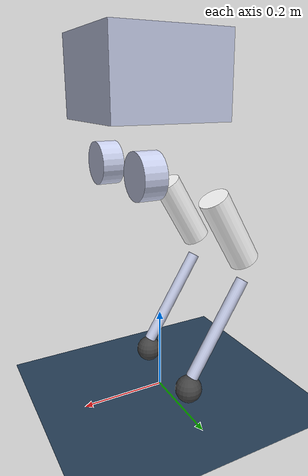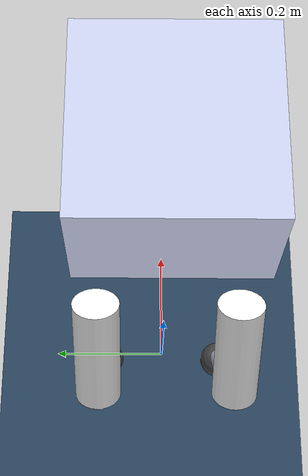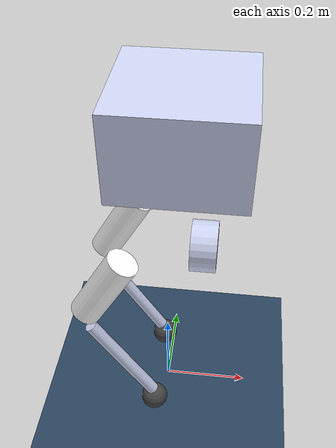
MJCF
<mujoco model="point_foot">
  <compiler angle="radian" autolimits="true"/>
  <statistic meansize="0.201559" extent="0.948112" center="0.00499457 0 -0.337764"/>

  <asset>
        <!--设置地板-->
        <texture name="grid" type="2d" builtin="checker" width="512" height="512" rgb1=".1 .2 .3" rgb2=".2 .3 .4"/>
        <material name="grid" texture="grid" texrepeat="1 1" texuniform="true" reflectance=".2"/>
    </asset>

    <option timestep="0.0005" integrator="RK4">
        <flag sensornoise="enable" />
    </option>

    <visual>
        <map force="0.1" zfar="30"/>
        <rgba haze="0.15 0.25 0.35 1"/>
        <global offwidth="2560" offheight="1440" elevation="-20" azimuth="120"/>
    </visual>

  <worldbody>
          <!--主光源（头顶）-->
      <light name="main_light" diffuse="2 2 2" specular="0.5 0.5 0.5" pos="0 0 40" dir="0 0 -1" castshadow="true"/>
      <!--辅助光源,四面八方-->
      <light name="aux_light1" diffuse=".8 .8 .8" pos=" 10 0 1" dir="-1 0 0" castshadow="false"/>
      <light name="aux_light2" diffuse=".8 .8 .8" pos="-10 0 1" dir=" 1 0 0" castshadow="false"/>
      <light name="aux_light3" diffuse=".8 .8 .8" pos="0  10 1" dir="0 -1 0" castshadow="false"/>
      <light name="aux_light4" diffuse=".8 .8 .8" pos="0 -10 1" dir="0  1 0" castshadow="false"/>
      <!--地板-->
      <geom name="floor" type="plane" size="0 0 0.05" material="grid"/>

       <body name="base_Link" pos="0 0 0.82" euler="0 0 0">
    <inertial pos="0.04576 0.00014 -0.16398"  mass="9.585" fullinertia="140110.479E-06 110641.449E-06 98944.542E-06 534.939E-06 28184.116E-06 -27.278E-06"/>
    <freejoint name="base_Link"/>
    <geom size="0.1325 0.13 0.09" pos="0.033 0 -0.07" type="box" rgba="0.79216 0.81961 0.93333 1"/>
    <site name="imu_site" pos="0 0 0" size="0.02" rgba="1 0 0 1" type="sphere" />

    <body name="abad_L_Link" pos="0.05556 0.105 -0.2602">
      <inertial pos="-0.06977 0.04479 0.00057" quat="0.595024 0.579772 0.394141 0.393019" mass="1.469" diaginertia="0.00252289 0.00208104 0.00139163"/>
      <joint name="abad_L_Joint" pos="0 0 0" axis="1 0 0" range="-0.38397 1.39626"/>
      <geom size="0.05 0.025" pos="0.03 0 0" quat="0.500398 0.5 0.499602 0.5" type="cylinder" rgba="0.79216 0.81961 0.93333 1"/>
      <body name="hip_L_Link" pos="-0.077 0.0205 0">
        <inertial pos="-0.02869 -0.0477 -0.03992" quat="0.853885 0.192797 0.226903 0.426877" mass="2.3" diaginertia="0.0233264 0.0230229 0.00277548"/>
        <joint name="hip_L_Joint" pos="0 0 0" axis="0 1 0" range="-1.01229 1.39626"/>
        <geom size="0.035 0.09" pos="-0.1 -0.02 -0.14" quat="0.965093 0 0.261909 0" type="cylinder" rgba="1 1 1 1"/>
        <body name="knee_L_Link" pos="-0.15 -0.0205 -0.25981">
          <inertial pos="0.0756053 0.00114274 -0.124051" quat="0.666349 -0.193556 -0.182961 0.696448" mass="0.730001" diaginertia="0.00961893 0.00954758 0.000224052"/>
          <joint name="knee_L_Joint" pos="0 0 0" axis="0 -1 0" range="-0.872665 1.36136"/>
          <geom size="0.015 0.13" pos="0.073 0 -0.12" quat="0.962425 0 -0.271547 0" type="cylinder" rgba="0.79216 0.81961 0.93333 1"/>
          <geom name="lfoot" size="0.032" pos="0.15 0 -0.25981" rgba="0.26667 0.26667 0.26667 1"/>
        </body>
      </body>
    </body>
    <body name="abad_R_Link" pos="0.05556 -0.105 -0.2602">
      <inertial pos="-0.06977 -0.04479 0.00057" quat="0.393019 0.394141 0.579772 0.595024" mass="1.469" diaginertia="0.00252289 0.00208104 0.00139163"/>
      <joint name="abad_R_Joint" pos="0 0 0" axis="1 0 0" range="-1.39626 0.38397"/>
      <geom size="0.05 0.025" pos="0.03 0 0" quat="0.500398 0.5 0.499602 0.5" type="cylinder" rgba="0.79216 0.81961 0.93333 1"/>
      <body name="hip_R_Link" pos="-0.077 -0.0205 0">
        <inertial pos="-0.02869 0.0477 -0.03992" quat="0.426877 0.226903 0.192797 0.853885" mass="2.3" diaginertia="0.0233264 0.0230229 0.00277548"/>
        <joint name="hip_R_Joint" pos="0 0 0" axis="0 -1 0" range="-1.39626 1.01229"/>
        <geom size="0.035 0.09" pos="-0.1 0.02 -0.14" quat="0.965093 0 0.261909 0" type="cylinder" rgba="1 1 1 1"/>
        <body name="knee_R_Link" pos="-0.15 0.0205 -0.25981">
          <inertial pos="0.0756053 -0.00114274 -0.124051" quat="0.696448 -0.182961 -0.193556 0.666349" mass="0.730001" diaginertia="0.00961893 0.00954758 0.000224052"/>
          <joint name="knee_R_Joint" pos="0 0 0" axis="0 1 0" range="-1.36136 0.872665"/>
          <geom size="0.015 0.13" pos="0.078 0 -0.12" quat="0.962425 0 -0.271547 0" type="cylinder" rgba="0.79216 0.81961 0.93333 1"/>
          <geom name="rfoot" size="0.032" pos="0.15 0 -0.25981" rgba="0.26667 0.26667 0.26667 1"/>
        </body>
      </body>
    </body>
    </body>
  </worldbody>

  <contact>
        <exclude body1="base_Link" body2="abad_L_Link"/>
        <exclude body1="base_Link" body2="hip_L_Link"/>
        <exclude body1="abad_L_Link"  body2="hip_L_Link"/>
        <exclude body1="hip_L_Link"  body2="knee_L_Link"/>

        <exclude body1="base_Link" body2="abad_R_Link"/>
        <exclude body1="base_Link" body2="hip_R_Link"/>
        <exclude body1="abad_R_Link"  body2="hip_R_Link"/>
        <exclude body1="hip_R_Link"  body2="knee_R_Link"/>

        <pair name="left_feet" geom1="lfoot" geom2="floor" condim="6" friction="2 2 0.05 0.05 0.05"/>
        <pair name="right_feet" geom1="rfoot" geom2="floor" condim="6" friction="2 2 0.05 0.05 0.05"/>
    </contact>

    <actuator>
        <motor name="abad_L_Joint"   joint="abad_L_Joint"   gear="1" ctrllimited="true" ctrlrange="-60 60"/>
        <motor name="hip_L_Joint"  joint="hip_L_Joint"  gear="1" ctrllimited="true" ctrlrange="-60 60"/>
        <motor name="knee_L_Joint"  joint="knee_L_Joint"  gear="1" ctrllimited="true" ctrlrange="-60 60"/>
        <motor name="abad_R_Joint"   joint="abad_R_Joint"   gear="1" ctrllimited="true" ctrlrange="-60 60"/>
        <motor name="hip_R_Joint"  joint="hip_R_Joint"  gear="1" ctrllimited="true" ctrlrange="-60 60"/>
        <motor name="knee_R_Joint"  joint="knee_R_Joint"  gear="1" ctrllimited="true" ctrlrange="-60 60"/>
    </actuator>

    <sensor>
        <!--组合IMU-->
        <accelerometer name="imu_acc" site="imu_site" />
        <gyro name="imu_gyro" site="imu_site" />
        <framepos name="imu_pos" objtype="site" objname="imu_site" />
        <framelinvel name="imu_linvel" objtype="site" objname="imu_site" />
    </sensor>
</mujoco>
